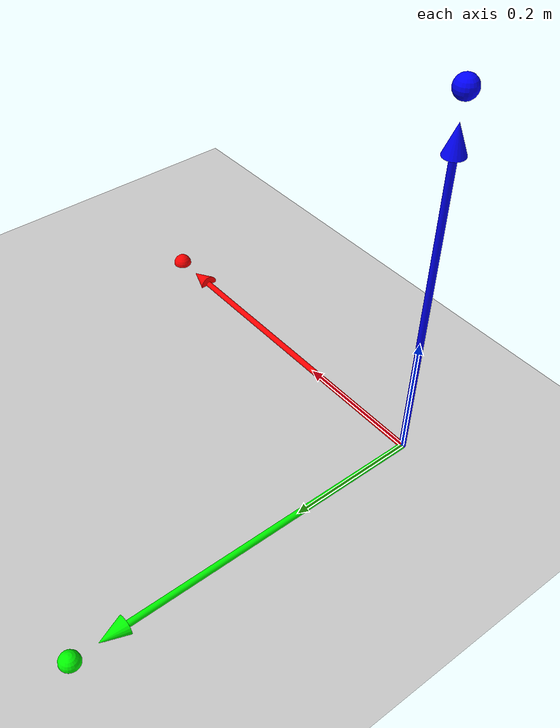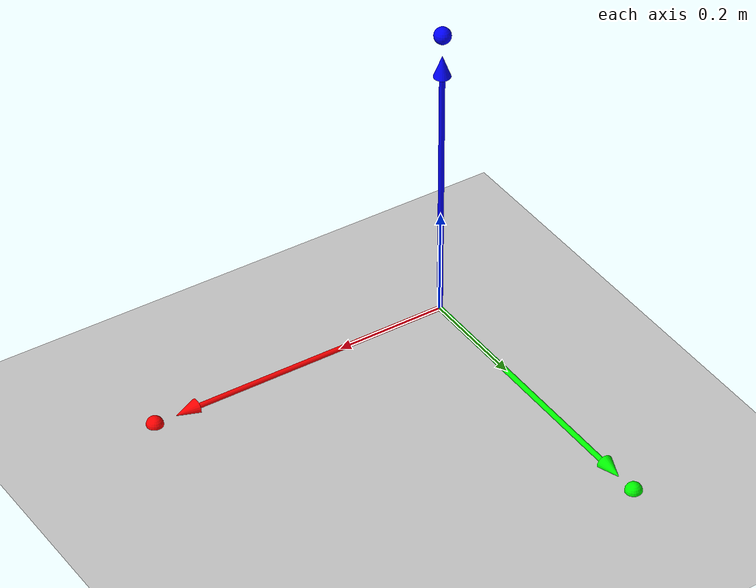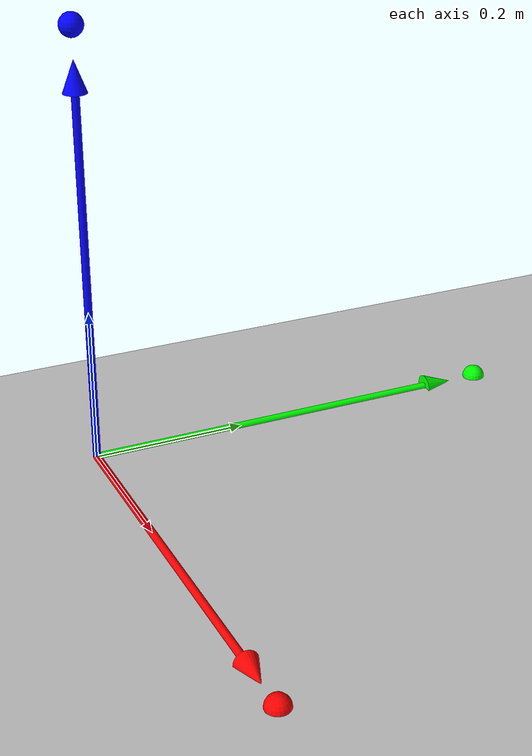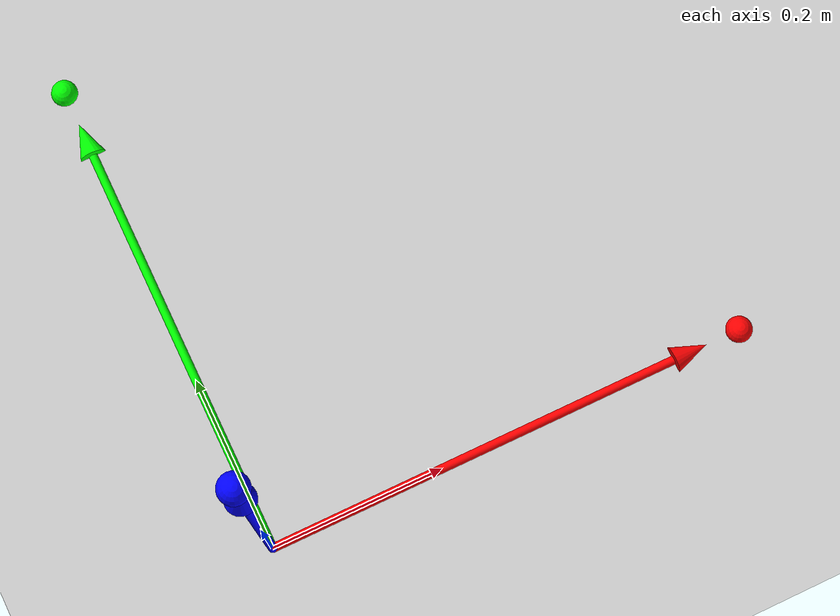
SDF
<?xml version="1.0" ?>
<sdf version="1.6">
  <world name="m1013_moveit">
    <physics name="1ms" type="ignored">
      <max_step_size>0.001</max_step_size>
      <real_time_factor>1.0</real_time_factor>
    </physics>

    <plugin filename="ignition-gazebo-physics-system" name="gz::sim::systems::Physics"/>
    <plugin filename="ignition-gazebo-user-commands-system" name="gz::sim::systems::UserCommands"/>
    <plugin filename="ignition-gazebo-scene-broadcaster-system" name="gz::sim::systems::SceneBroadcaster"/>
    <plugin filename="ignition-gazebo-contact-system" name="gz::sim::systems::Contact"/>

    <!-- 조명 -->
    <light type="directional" name="sun">
      <cast_shadows>true</cast_shadows>
      <pose>0 0 10 0 0 0</pose>
      <diffuse>0.8 0.8 0.8 1</diffuse>
      <specular>0.2 0.2 0.2 1</specular>
      <attenuation>
        <range>1000</range>
        <constant>0.9</constant>
        <linear>0.01</linear>
        <quadratic>0.001</quadratic>
      </attenuation>
      <direction>-0.5 0.1 -0.9</direction>
    </light>

    <!-- 바닥 -->
    <model name="ground_plane">
      <static>true</static>
      <link name="link">
        <collision name="collision">
          <geometry>
            <plane><normal>0 0 1</normal><size>100 100</size></plane>
          </geometry>
        </collision>
        <visual name="visual">
          <geometry>
            <plane><normal>0 0 1</normal><size>100 100</size></plane>
          </geometry>
          <material>
            <ambient>0.8 0.8 0.8 1</ambient>
            <diffuse>0.8 0.8 0.8 1</diffuse>
            <specular>0.8 0.8 0.8 1</specular>
          </material>
        </visual>
      </link>
    </model>

    <!-- XYZ 좌표축 (원점) -->
    <!-- X축 (빨강) -->
    <model name="axis_x">
      <static>true</static>
      <link name="link">
        <visual name="shaft">
          <pose>0.25 0 0 0 1.5708 0</pose>
          <geometry><cylinder><radius>0.005</radius><length>0.5</length></cylinder></geometry>
          <material><ambient>1 0 0 1</ambient><diffuse>1 0 0 1</diffuse></material>
        </visual>
        <visual name="head">
          <pose>0.5 0 0 0 1.5708 0</pose>
          <geometry><cone><radius>0.015</radius><length>0.04</length></cone></geometry>
          <material><ambient>1 0 0 1</ambient><diffuse>1 0 0 1</diffuse></material>
        </visual>
        <visual name="label">
          <pose>0.56 0 0 0 0 0</pose>
          <geometry><sphere><radius>0.015</radius></sphere></geometry>
          <material><ambient>1 0 0 1</ambient><diffuse>1 0 0 1</diffuse></material>
        </visual>
      </link>
    </model>

    <!-- Y축 (초록) -->
    <model name="axis_y">
      <static>true</static>
      <link name="link">
        <visual name="shaft">
          <pose>0 0.25 0 -1.5708 0 0</pose>
          <geometry><cylinder><radius>0.005</radius><length>0.5</length></cylinder></geometry>
          <material><ambient>0 1 0 1</ambient><diffuse>0 1 0 1</diffuse></material>
        </visual>
        <visual name="head">
          <pose>0 0.5 0 -1.5708 0 0</pose>
          <geometry><cone><radius>0.015</radius><length>0.04</length></cone></geometry>
          <material><ambient>0 1 0 1</ambient><diffuse>0 1 0 1</diffuse></material>
        </visual>
        <visual name="label">
          <pose>0 0.56 0 0 0 0</pose>
          <geometry><sphere><radius>0.015</radius></sphere></geometry>
          <material><ambient>0 1 0 1</ambient><diffuse>0 1 0 1</diffuse></material>
        </visual>
      </link>
    </model>

    <!-- Z축 (파랑) -->
    <model name="axis_z">
      <static>true</static>
      <link name="link">
        <visual name="shaft">
          <pose>0 0 0.25 0 0 0</pose>
          <geometry><cylinder><radius>0.005</radius><length>0.5</length></cylinder></geometry>
          <material><ambient>0 0 1 1</ambient><diffuse>0 0 1 1</diffuse></material>
        </visual>
        <visual name="head">
          <pose>0 0 0.5 0 0 0</pose>
          <geometry><cone><radius>0.015</radius><length>0.04</length></cone></geometry>
          <material><ambient>0 0 1 1</ambient><diffuse>0 0 1 1</diffuse></material>
        </visual>
        <visual name="label">
          <pose>0 0 0.56 0 0 0</pose>
          <geometry><sphere><radius>0.015</radius></sphere></geometry>
          <material><ambient>0 0 1 1</ambient><diffuse>0 0 1 1</diffuse></material>
        </visual>
      </link>
    </model>

  </world>
</sdf>
